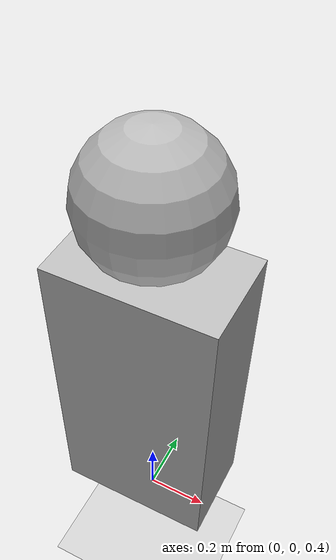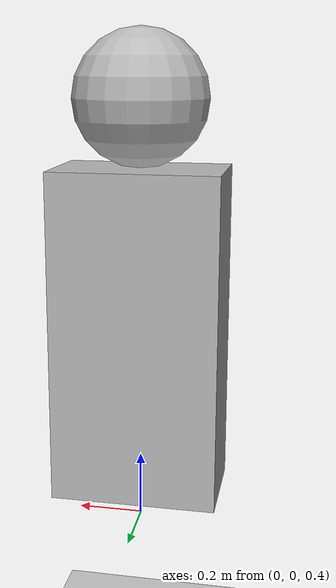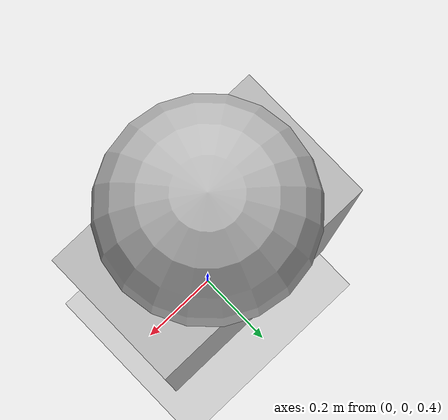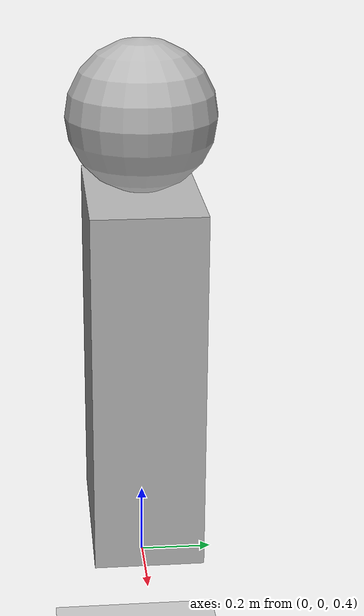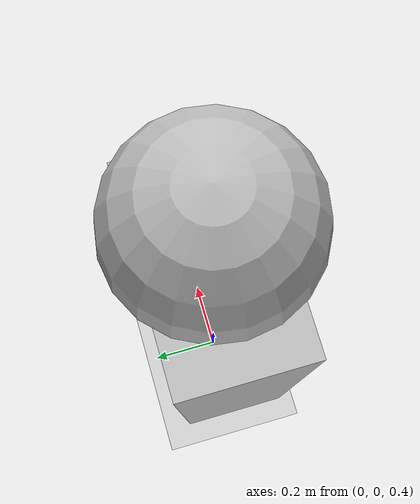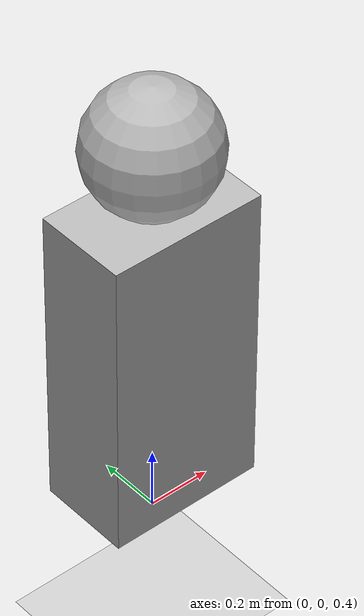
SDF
<?xml version="1.0" ?>
<sdf version="1.9">
  <world name="careedge_world">

    <gravity>0 0 -9.81</gravity>

    <plugin
      filename="gz-sim-physics-system"
      name="gz::sim::systems::Physics">
    </plugin>

    <plugin
      filename="gz-sim-user-commands-system"
      name="gz::sim::systems::UserCommands">
    </plugin>

    <plugin
      filename="gz-sim-scene-broadcaster-system"
      name="gz::sim::systems::SceneBroadcaster">
    </plugin>

    <plugin
      filename="gz-sim-sensors-system"
      name="gz::sim::systems::Sensors">
      <render_engine>ogre2</render_engine>
    </plugin>

    <plugin
      filename="gz-sim-imu-system"
      name="gz::sim::systems::Imu">
    </plugin>

    <light name="sun" type="directional">
      <cast_shadows>true</cast_shadows>
      <pose>0 0 10 0 0 0</pose>
      <diffuse>0.8 0.8 0.8 1</diffuse>
      <direction>-0.5 0.5 -1</direction>
    </light>

    <model name="ground">
      <static>true</static>
      <link name="link">
        <collision name="collision">
          <geometry>
            <plane>
              <normal>0 0 1</normal>
            </plane>
          </geometry>
        </collision>

        <visual name="visual">
          <geometry>
            <plane>
              <normal>0 0 1</normal>
              <size>20 20</size>
            </plane>
          </geometry>
        </visual>
      </link>
    </model>
    <model name="virtual_patient">
      <pose>0 0 1 0 0 0</pose>

      <link name="body">
        <inertial>
          <mass>70</mass>
          <inertia>
            <ixx>10</ixx>
            <iyy>10</iyy>
            <izz>10</izz>
          </inertia>
        </inertial>

        <collision name="body_collision">
          <geometry>
            <box>
              <size>0.5 0.3 1.0</size>
            </box>
          </geometry>
        </collision>

        <visual name="body_visual">
          <geometry>
            <box>
              <size>0.5 0.3 1.0</size>
            </box>
          </geometry>
        </visual>
        <sensor name="patient_imu" type="imu">
          <always_on>true</always_on>
          <update_rate>50</update_rate>
          <visualize>true</visualize>

          <topic>/careedge/patient/imu</topic>

          <imu>
            <angular_velocity>
              <x>
                <noise type="gaussian">
                  <mean>0.0</mean>
                  <stddev>0.01</stddev>
                </noise>
              </x>
              <y>
                <noise type="gaussian">
                  <mean>0.0</mean>
                  <stddev>0.01</stddev>
                </noise>
              </y>
              <z>
                <noise type="gaussian">
                  <mean>0.0</mean>
                  <stddev>0.01</stddev>
                </noise>
              </z>
            </angular_velocity>

            <linear_acceleration>
              <x>
                <noise type="gaussian">
                  <mean>0.0</mean>
                  <stddev>0.05</stddev>
                </noise>
              </x>
              <y>
                <noise type="gaussian">
                  <mean>0.0</mean>
                  <stddev>0.05</stddev>
                </noise>
              </y>
              <z>
                <noise type="gaussian">
                  <mean>0.0</mean>
                  <stddev>0.05</stddev>
                </noise>
              </z>
            </linear_acceleration>
          </imu>
        </sensor>
      </link>

      <link name="head">
        <pose>0 0 0.7 0 0 0</pose>

        <collision name="head_collision">
          <geometry>
            <sphere>
              <radius>0.2</radius>
            </sphere>
          </geometry>
        </collision>

        <visual name="head_visual">
          <geometry>
            <sphere>
              <radius>0.2</radius>
            </sphere>
          </geometry>
        </visual>
      </link>

      <joint name="head_joint" type="fixed">
        <parent>body</parent>
        <child>head</child>
      </joint>

    </model>

  </world>
</sdf>
